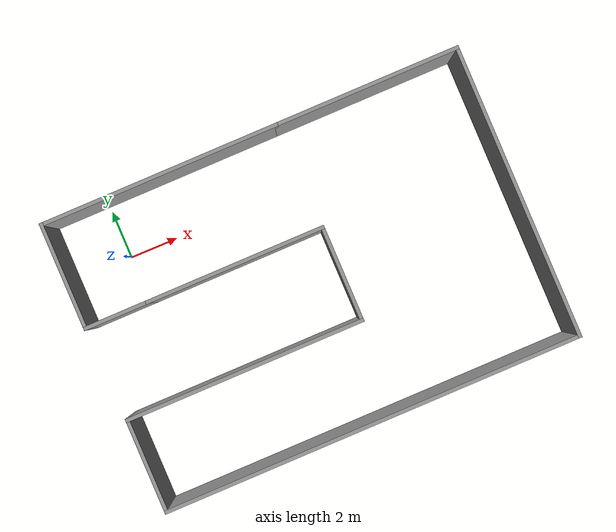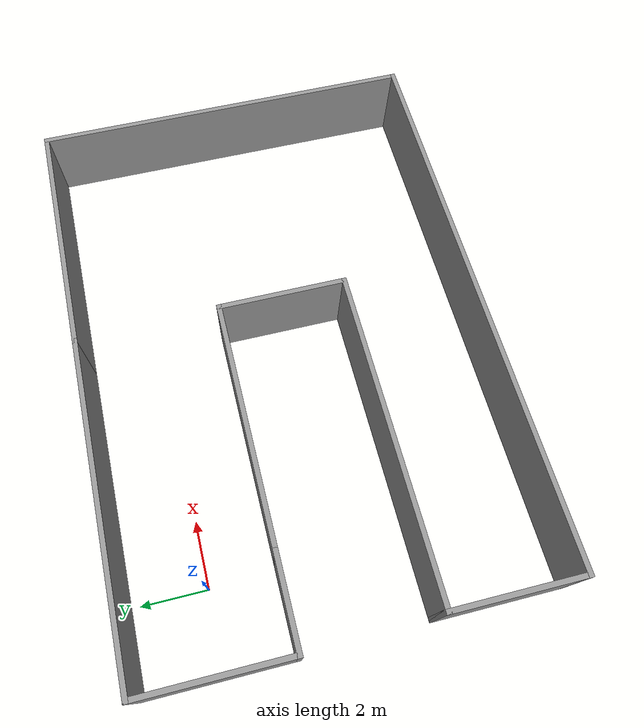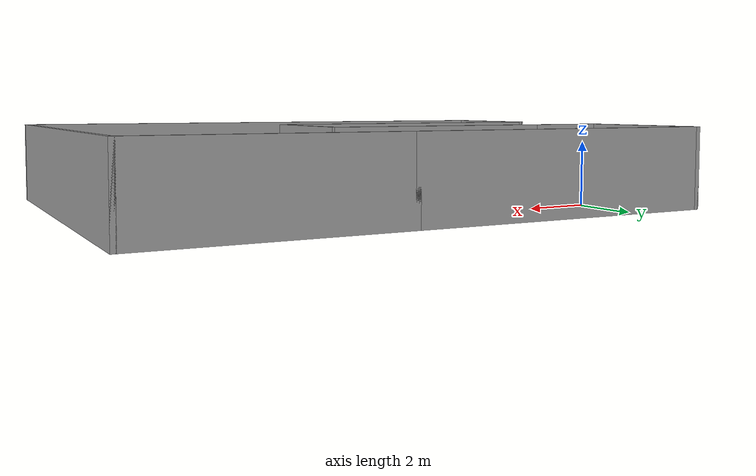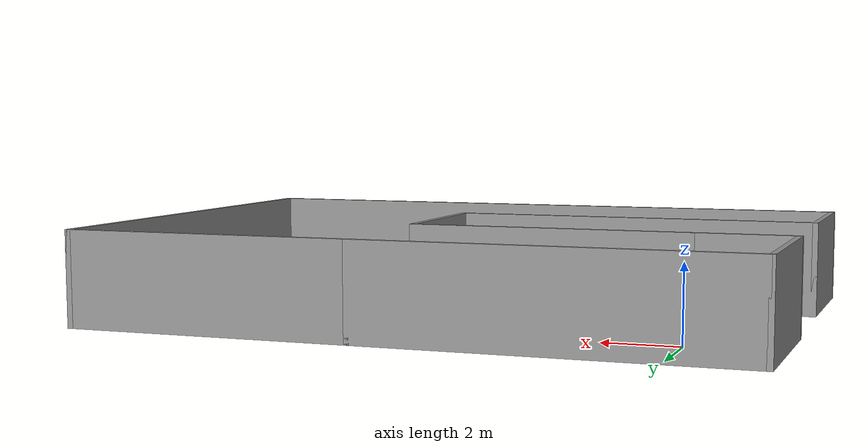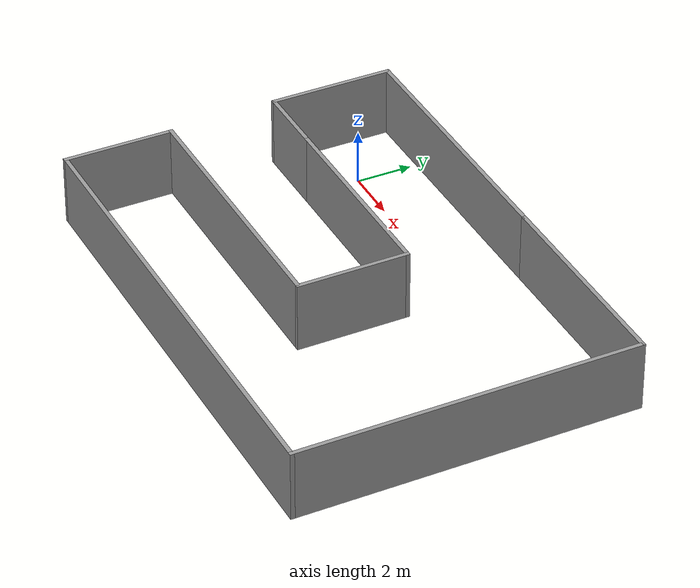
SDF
<?xml version='1.0'?>
<sdf version='1.7'>
  <model name='walls'>
    <pose>6.36771 -3.7411 0 0 -0 0</pose>
    <link name='Wall_0'>
      <collision name='Wall_0_Collision'>
        <geometry>
          <box>
            <size>7.5 0.15 2.5</size>
          </box>
        </geometry>
        <pose>0 0 1.25 0 -0 0</pose>
      </collision>
      <visual name='Wall_0_Visual'>
        <pose>0 0 1.25 0 -0 0</pose>
        <geometry>
          <box>
            <size>7.5 0.15 2.5</size>
          </box>
        </geometry>
        <material>
          <script>
            <uri>file://media/materials/scripts/gazebo.material</uri>
            <name>Gazebo/Grey</name>
          </script>
          <ambient>1 1 1 1</ambient>
        </material>
        <meta>
          <layer>0</layer>
        </meta>
      </visual>
      <pose>-2.45 1.7 0 0 -0 0</pose>
    </link>
    <link name='Wall_12'>
      <collision name='Wall_12_Collision'>
        <geometry>
          <box>
            <size>10 0.15 2.5</size>
          </box>
        </geometry>
        <pose>0 0 1.25 0 -0 0</pose>
      </collision>
      <visual name='Wall_12_Visual'>
        <pose>0 0 1.25 0 -0 0</pose>
        <geometry>
          <box>
            <size>10 0.15 2.5</size>
          </box>
        </geometry>
        <material>
          <script>
            <uri>file://media/materials/scripts/gazebo.material</uri>
            <name>Gazebo/Grey</name>
          </script>
          <ambient>1 1 1 1</ambient>
        </material>
        <meta>
          <layer>0</layer>
        </meta>
      </visual>
      <pose>-3.7 -2.2 0 0 -0 0</pose>
    </link>
    <link name='Wall_13'>
      <collision name='Wall_13_Collision'>
        <geometry>
          <box>
            <size>4.05 0.15 2.5</size>
          </box>
        </geometry>
        <pose>0 0 1.25 0 -0 0</pose>
      </collision>
      <visual name='Wall_13_Visual'>
        <pose>0 0 1.25 0 -0 0</pose>
        <geometry>
          <box>
            <size>4.05 0.15 2.5</size>
          </box>
        </geometry>
        <material>
          <script>
            <uri>file://media/materials/scripts/gazebo.material</uri>
            <name>Gazebo/Grey</name>
          </script>
          <ambient>1 1 1 1</ambient>
        </material>
        <meta>
          <layer>0</layer>
        </meta>
      </visual>
      <pose>1.225 -0.25 0 0 -0 1.5708</pose>
    </link>
    <link name='Wall_2'>
      <collision name='Wall_2_Collision'>
        <geometry>
          <box>
            <size>2.75 0.15 2.5</size>
          </box>
        </geometry>
        <pose>0 0 1.25 0 -0 0</pose>
      </collision>
      <visual name='Wall_2_Visual'>
        <pose>0 0 1.25 0 -0 0</pose>
        <geometry>
          <box>
            <size>2.75 0.15 2.5</size>
          </box>
        </geometry>
        <material>
          <script>
            <uri>file://media/materials/scripts/gazebo.material</uri>
            <name>Gazebo/Grey</name>
          </script>
          <ambient>1 1 1 1</ambient>
        </material>
        <meta>
          <layer>0</layer>
        </meta>
      </visual>
      <pose>-7.425 1.7 0 0 -0 3.14159</pose>
    </link>
    <link name='Wall_3'>
      <collision name='Wall_3_Collision'>
        <geometry>
          <box>
            <size>4.5 0.15 2.5</size>
          </box>
        </geometry>
        <pose>0 0 1.25 0 -0 0</pose>
      </collision>
      <visual name='Wall_3_Visual'>
        <pose>0 0 1.25 0 -0 0</pose>
        <geometry>
          <box>
            <size>4.5 0.15 2.5</size>
          </box>
        </geometry>
        <material>
          <script>
            <uri>file://media/materials/scripts/gazebo.material</uri>
            <name>Gazebo/Grey</name>
          </script>
          <ambient>1 1 1 1</ambient>
        </material>
        <meta>
          <layer>0</layer>
        </meta>
      </visual>
      <pose>-8.725 3.875 0 0 -0 1.5708</pose>
    </link>
    <link name='Wall_4'>
      <collision name='Wall_4_Collision'>
        <geometry>
          <box>
            <size>10 0.15 2.5</size>
          </box>
        </geometry>
        <pose>0 0 1.25 0 -0 0</pose>
      </collision>
      <visual name='Wall_4_Visual'>
        <pose>0 0 1.25 0 -0 0</pose>
        <geometry>
          <box>
            <size>10 0.15 2.5</size>
          </box>
        </geometry>
        <material>
          <script>
            <uri>file://media/materials/scripts/gazebo.material</uri>
            <name>Gazebo/Grey</name>
          </script>
          <ambient>1 1 1 1</ambient>
        </material>
        <meta>
          <layer>0</layer>
        </meta>
      </visual>
      <pose>-3.8 6.05 0 0 -0 0</pose>
    </link>
    <link name='Wall_5'>
      <collision name='Wall_5_Collision'>
        <geometry>
          <box>
            <size>7.75 0.15 2.5</size>
          </box>
        </geometry>
        <pose>0 0 1.25 0 -0 0</pose>
      </collision>
      <visual name='Wall_5_Visual'>
        <pose>0 0 1.25 0 -0 0</pose>
        <geometry>
          <box>
            <size>7.75 0.15 2.5</size>
          </box>
        </geometry>
        <material>
          <script>
            <uri>file://media/materials/scripts/gazebo.material</uri>
            <name>Gazebo/Grey</name>
          </script>
          <ambient>1 1 1 1</ambient>
        </material>
        <meta>
          <layer>0</layer>
        </meta>
      </visual>
      <pose>4.925 6.05 0 0 -0 0</pose>
    </link>
    <link name='Wall_6'>
      <collision name='Wall_6_Collision'>
        <geometry>
          <box>
            <size>12.25 0.15 2.5</size>
          </box>
        </geometry>
        <pose>0 0 1.25 0 -0 0</pose>
      </collision>
      <visual name='Wall_6_Visual'>
        <pose>0 0 1.25 0 -0 0</pose>
        <geometry>
          <box>
            <size>12.25 0.15 2.5</size>
          </box>
        </geometry>
        <material>
          <script>
            <uri>file://media/materials/scripts/gazebo.material</uri>
            <name>Gazebo/Grey</name>
          </script>
          <ambient>1 1 1 1</ambient>
        </material>
        <meta>
          <layer>0</layer>
        </meta>
      </visual>
      <pose>8.725 0 0 0 -0 -1.5708</pose>
    </link>
    <link name='Wall_7'>
      <collision name='Wall_7_Collision'>
        <geometry>
          <box>
            <size>17.5 0.15 2.5</size>
          </box>
        </geometry>
        <pose>0 0 1.25 0 -0 0</pose>
      </collision>
      <visual name='Wall_7_Visual'>
        <pose>0 0 1.25 0 -0 0</pose>
        <geometry>
          <box>
            <size>17.5 0.15 2.5</size>
          </box>
        </geometry>
        <material>
          <script>
            <uri>file://media/materials/scripts/gazebo.material</uri>
            <name>Gazebo/Grey</name>
          </script>
          <ambient>1 1 1 1</ambient>
        </material>
        <meta>
          <layer>0</layer>
        </meta>
      </visual>
      <pose>0.05 -6.05 0 0 -0 3.14159</pose>
    </link>
    <link name='Wall_8'>
      <collision name='Wall_8_Collision'>
        <geometry>
          <box>
            <size>4 0.15 2.5</size>
          </box>
        </geometry>
        <pose>0 0 1.25 0 -0 0</pose>
      </collision>
      <visual name='Wall_8_Visual'>
        <pose>0 0 1.25 0 -0 0</pose>
        <geometry>
          <box>
            <size>4 0.15 2.5</size>
          </box>
        </geometry>
        <material>
          <script>
            <uri>file://media/materials/scripts/gazebo.material</uri>
            <name>Gazebo/Grey</name>
          </script>
          <ambient>1 1 1 1</ambient>
        </material>
        <meta>
          <layer>0</layer>
        </meta>
      </visual>
      <pose>-8.625 -4.125 0 0 -0 1.5708</pose>
    </link>
    <static>1</static>
  </model>
</sdf>
